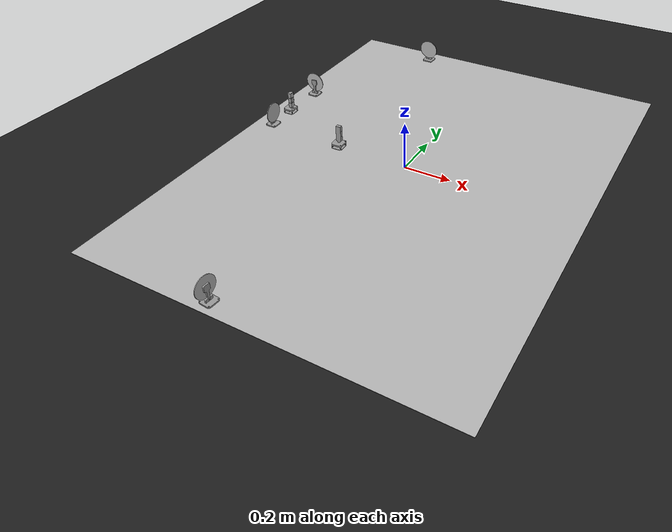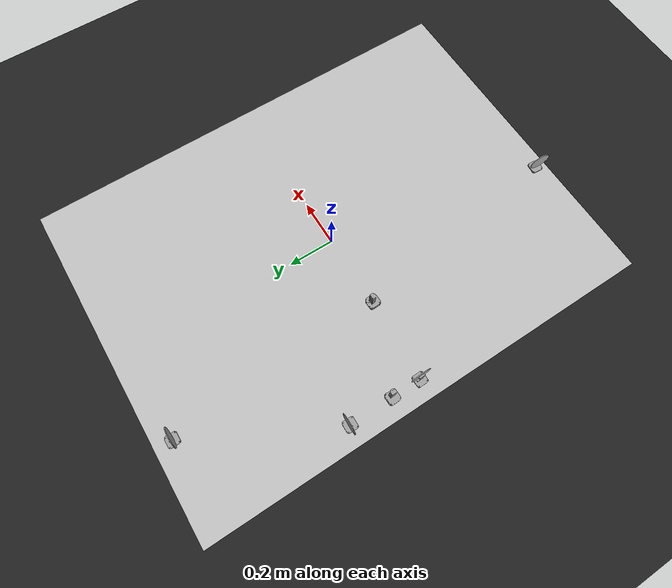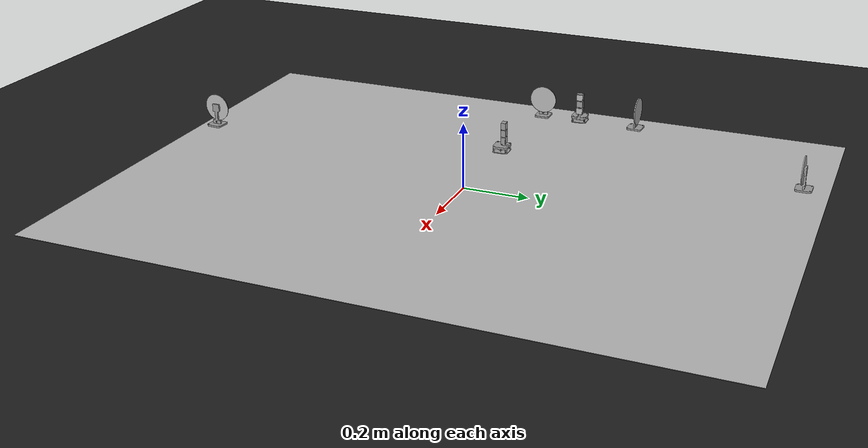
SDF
<sdf version="1.6">
 <world name="default">
  <scene>
   <ambient>0 0 0 1</ambient>
   <shadows>0</shadows>
   <grid>0</grid>
   <background>0.7 0.7 0.7 1</background>
  </scene>
  <light name="sun" type="directional">
   <pose>0 0 10 0 -0 0</pose>
   <diffuse>0.8 0.8 0.8 1</diffuse>
   <specular>0.1 0.1 0.1 1</specular>
   <attenuation>
    <range>1000</range>
    <constant>0.9</constant>
    <linear>0.01</linear>
    <quadratic>0.001</quadratic>
   </attenuation>
   <direction>-0.5 0.5 -1</direction>
  </light>
  <gravity>0 0 -9.8</gravity>
  <magnetic_field>6e-06 2.3e-05 -4.2e-05</magnetic_field>
  <atmosphere type="adiabatic"/>
  <physics name="default_physics" default="0" type="ode">
   <max_step_size>0.001</max_step_size>
   <real_time_factor>1</real_time_factor>
   <real_time_update_rate>1000</real_time_update_rate>
   <ode>
    <solver>
     <iters>10</iters>
     <type>quick</type>
     <sor>1.3</sor>
     <use_dynamic_moi_rescaling>0</use_dynamic_moi_rescaling>
    </solver>
    <constraints>
     <cfm>0</cfm>
     <erp>0.2</erp>
     <contact_max_correcting_vel>100</contact_max_correcting_vel>
     <contact_surface_layer>0.001</contact_surface_layer>
    </constraints>
   </ode>
  </physics>
  <spherical_coordinates>
   <surface_model>EARTH_WGS84</surface_model>
   <latitude_deg>0</latitude_deg>
   <longitude_deg>0</longitude_deg>
   <elevation>0</elevation>
   <heading_deg>0</heading_deg>
  </spherical_coordinates>
  <light name="user_point_light_2" type="point">
   <pose>-0.948146 0.604519 1 0 -0 0</pose>
   <diffuse>0.5 0.5 0.5 1</diffuse>
   <specular>0.1 0.1 0.1 1</specular>
   <attenuation>
    <range>20</range>
    <constant>0.5</constant>
    <linear>0.01</linear>
    <quadratic>0.001</quadratic>
   </attenuation>
   <cast_shadows>0</cast_shadows>
   <direction>0 0 -1</direction>
  </light>
  <light name="user_point_light_6" type="point">
   <pose>1.63854 1.69565 1 0 -0 0</pose>
   <diffuse>0.5 0.5 0.5 1</diffuse>
   <specular>0.1 0.1 0.1 1</specular>
   <attenuation>
    <range>20</range>
    <constant>0.5</constant>
    <linear>0.01</linear>
    <quadratic>0.001</quadratic>
   </attenuation>
   <cast_shadows>0</cast_shadows>
   <direction>0 0 -1</direction>
  </light>
  <audio><device>default</device></audio>
  <model name="track">
   <static>1</static>
   <link name="track_link">
    <visual name="track_visual">
     <cast_shadows>0</cast_shadows>
     <geometry><plane><normal>0 0 1</normal><size>1.5 2</size></plane></geometry>
     <material>
      <script>
       <uri>model://track/materials/scripts</uri>
       <uri>model://track/materials/textures/</uri>
       <name>track</name>
      </script>
     </material>
    </visual>
    <collision name="track_collision">
     <geometry><plane><normal>0 0 1</normal><size>1.5 2</size></plane></geometry>
     <surface><friction><ode><mu>1</mu><mu2>1</mu2></ode></friction></surface>
    </collision>
   </link>
  </model>
  <model name="ground">
   <pose>0.038955 0.031565 -0.01 0 -0 0</pose>
   <static>1</static>
   <link name="ground">
    <collision name="ground_coll"><geometry><box><size>8 8 0.01</size></box></geometry></collision>
    <visual name="ground_vis">
     <geometry><box><size>10 10 0.01</size></box></geometry>
     <material>
      <script><uri>file://media/materials/scripts/gazebo.material</uri><name>Gazebo/FlatBlack</name></script>
     </material>
    </visual>
   </link>
  </model>
  <model name="StopSign">
   <pose>-0.361248 0.924492 -0.059949 0.002403 -0.000769 -0.000687</pose>
   <link name="base">
    <visual name="visual">
     <pose>0 0 0.06 1.5707 -0 0</pose>
     <geometry><mesh><uri>model://StopSign/meshes/Sign_pedestal.dae</uri><scale>1 1 1</scale></mesh></geometry>
     <material>
      <script><name>Gazebo/Grey</name><uri>file://media/materials/scripts/gazebo.material</uri></script>
     </material>
    </visual>
    <collision name="collision">
     <pose>0 0 0.12 0 -0 0</pose>
     <geometry><cylinder><radius>0.02</radius><length>0.12</length></cylinder></geometry>
    </collision>
    <inertial>
     <mass>0.015</mass>
     <inertia>
      <ixx>0.166667</ixx>
      <ixy>0</ixy>
      <ixz>0</ixz>
      <iyy>0.166667</iyy>
      <iyz>0</iyz>
      <izz>0.166667</izz>
     </inertia>
    </inertial>
   </link>
   <link name="sign">
    <visual name="visual">
     <pose>0 -0.006 0.12 1.57 -0 0</pose>
     <geometry><mesh><uri>model://StopSign/meshes/stop_sign.dae</uri><scale>1 1 1</scale></mesh></geometry>
     <material>
      <script>
       <uri>model://StopSign/materials/scripts</uri>
       <uri>model://StopSign/materials/textures/</uri>
       <name>StopSign</name>
      </script>
     </material>
    </visual>
    <inertial>
     <mass>0.001</mass>
     <inertia>
      <ixx>0.166667</ixx>
      <ixy>0</ixy>
      <ixz>0</ixz>
      <iyy>0.166667</iyy>
      <iyz>0</iyz>
      <izz>0.166667</izz>
     </inertia>
    </inertial>
   </link>
   <joint name="joint_sign" type="fixed"><parent>base</parent><child>sign</child></joint>
  </model>
  <model name="AheadSign">
   <link name="base">
    <visual name="visual">
     <pose>0 0 0.06 1.5707 -0 0</pose>
     <geometry><mesh><uri>model://AheadSign/meshes/Sign_pedestal.dae</uri><scale>1 1 1</scale></mesh></geometry>
     <material>
      <script><name>Gazebo/Grey</name><uri>file://media/materials/scripts/gazebo.material</uri></script>
     </material>
    </visual>
    <collision name="collision">
     <pose>0 0 0.12 0 -0 0</pose>
     <geometry><cylinder><radius>0.02</radius><length>0.12</length></cylinder></geometry>
    </collision>
    <inertial>
     <mass>0.015</mass>
     <inertia>
      <ixx>0.166667</ixx>
      <ixy>0</ixy>
      <ixz>0</ixz>
      <iyy>0.166667</iyy>
      <iyz>0</iyz>
      <izz>0.166667</izz>
     </inertia>
    </inertial>
   </link>
   <link name="sign">
    <visual name="visual">
     <pose>0 -0.006 0.12 1.57 -0 0</pose>
     <geometry><mesh><uri>model://AheadSign/meshes/AheadSign.dae</uri><scale>1 1 1</scale></mesh></geometry>
     <material>
      <script>
       <uri>model://AheadSign/materials/scripts</uri>
       <uri>model://AheadSign/materials/textures/</uri>
       <name>AheadSign</name>
      </script>
     </material>
    </visual>
    <inertial>
     <mass>0.001</mass>
     <inertia>
      <ixx>0.166667</ixx>
      <ixy>0</ixy>
      <ixz>0</ixz>
      <iyy>0.166667</iyy>
      <iyz>0</iyz>
      <izz>0.166667</izz>
     </inertia>
    </inertial>
   </link>
   <joint name="joint_sign" type="fixed"><parent>base</parent><child>sign</child></joint>
   <pose>-0.667236 0.339053 -0.059989 -0.000516 -9.6e-05 3.11698</pose>
  </model>
  <model name="TurnRightSign">
   <link name="base">
    <visual name="visual">
     <pose>0 0 0.06 1.5707 -0 0</pose>
     <geometry>
      <mesh><uri>model://TurnRightSign/meshes/Sign_pedestal.dae</uri><scale>1 1 1</scale></mesh>
     </geometry>
     <material>
      <script><name>Gazebo/Grey</name><uri>file://media/materials/scripts/gazebo.material</uri></script>
     </material>
    </visual>
    <collision name="collision">
     <pose>0 0 0.12 0 -0 0</pose>
     <geometry><cylinder><radius>0.02</radius><length>0.12</length></cylinder></geometry>
    </collision>
    <inertial>
     <mass>0.015</mass>
     <inertia>
      <ixx>0.166667</ixx>
      <ixy>0</ixy>
      <ixz>0</ixz>
      <iyy>0.166667</iyy>
      <iyz>0</iyz>
      <izz>0.166667</izz>
     </inertia>
    </inertial>
   </link>
   <link name="sign">
    <visual name="visual">
     <pose>0 -0.006 0.12 1.57 -0 0</pose>
     <geometry>
      <mesh><uri>model://TurnRightSign/meshes/TurnRightSign.dae</uri><scale>1 1 1</scale></mesh>
     </geometry>
     <material>
      <script>
       <uri>model://TurnRightSign/materials/scripts</uri>
       <uri>model://TurnRightSign/materials/textures/</uri>
       <name>TurnRightSign</name>
      </script>
     </material>
    </visual>
    <inertial>
     <mass>0.001</mass>
     <inertia>
      <ixx>0.166667</ixx>
      <ixy>0</ixy>
      <ixz>0</ixz>
      <iyy>0.166667</iyy>
      <iyz>0</iyz>
      <izz>0.166667</izz>
     </inertia>
    </inertial>
   </link>
   <joint name="joint_sign" type="fixed"><parent>base</parent><child>sign</child></joint>
   <pose>-0.66897 0.020478 -0.059968 0.001249 -0.001013 1.59189</pose>
  </model>
  <model name="NoSpeedLSign">
   <link name="base">
    <visual name="visual">
     <pose>0 0 0.06 1.5707 -0 0</pose>
     <geometry><mesh><uri>model://NoSpeedLSign/meshes/Sign_pedestal.dae</uri><scale>1 1 1</scale></mesh></geometry>
     <material>
      <script><name>Gazebo/Grey</name><uri>file://media/materials/scripts/gazebo.material</uri></script>
     </material>
    </visual>
    <collision name="collision">
     <pose>0 0 0.12 0 -0 0</pose>
     <geometry><cylinder><radius>0.02</radius><length>0.12</length></cylinder></geometry>
    </collision>
    <inertial>
     <mass>0.015</mass>
     <inertia>
      <ixx>0.166667</ixx>
      <ixy>0</ixy>
      <ixz>0</ixz>
      <iyy>0.166667</iyy>
      <iyz>0</iyz>
      <izz>0.166667</izz>
     </inertia>
    </inertial>
   </link>
   <link name="sign">
    <visual name="visual">
     <pose>0 -0.006 0.12 1.57 -0 0</pose>
     <geometry><mesh><uri>model://NoSpeedLSign/meshes/NoSpeedLSign.dae</uri><scale>1 1 1</scale></mesh></geometry>
     <material>
      <script>
       <uri>model://NoSpeedLSign/materials/scripts</uri>
       <uri>model://NoSpeedLSign/materials/textures/</uri>
       <name>NoSpeedLSign</name>
      </script>
     </material>
    </visual>
    <inertial>
     <mass>0.001</mass>
     <inertia>
      <ixx>0.166667</ixx>
      <ixy>0</ixy>
      <ixz>0</ixz>
      <iyy>0.166667</iyy>
      <iyz>0</iyz>
      <izz>0.166667</izz>
     </inertia>
    </inertial>
   </link>
   <joint name="joint_sign" type="fixed"><parent>base</parent><child>sign</child></joint>
   <pose>-0.178344 -0.95185 -0.059826 0.008414 0.001619 -1.66208</pose>
  </model>
  <model name="Traffic_Light">
   <link name="base">
    <visual name="visual">
     <pose>0 0 0.06 1.5707 -0 0</pose>
     <geometry>
      <mesh><uri>model://Traffic_Light/meshes/traffic_light_stand.stl</uri><scale>1 1 1</scale></mesh>
     </geometry>
     <material>
      <script><name>Gazebo/Grey</name><uri>file://media/materials/scripts/gazebo.material</uri></script>
     </material>
    </visual>
    <collision name="collision">
     <pose>0 0 0.12 0 -0 0</pose>
     <geometry><cylinder><radius>0.02</radius><length>0.12</length></cylinder></geometry>
    </collision>
    <inertial>
     <mass>0.015</mass>
     <inertia>
      <ixx>0.166667</ixx>
      <ixy>0</ixy>
      <ixz>0</ixz>
      <iyy>0.166667</iyy>
      <iyz>0</iyz>
      <izz>0.166667</izz>
     </inertia>
    </inertial>
   </link>
   <link name="green_light">
    <visual name="visual">
     <pose>0 -0.014 0.098 0 -0 0</pose>
     <geometry><box><size>0.02 0.001 0.02</size></box></geometry>
     <plugin name="color timed" filename="libcolor_timer_plugin.so">
      <color>0 1 0 0</color>
      <period>20</period>
      <use_wall_time>1</use_wall_time>
     </plugin>
    </visual>
    <inertial>
     <mass>0.001</mass>
     <inertia>
      <ixx>0.166667</ixx>
      <ixy>0</ixy>
      <ixz>0</ixz>
      <iyy>0.166667</iyy>
      <iyz>0</iyz>
      <izz>0.166667</izz>
     </inertia>
    </inertial>
   </link>
   <link name="amber_light">
    <visual name="visual">
     <pose>0 -0.014 0.122 0 -0 0</pose>
     <geometry><box><size>0.02 0.001 0.02</size></box></geometry>
     <material>
      <script><uri>file://media/materials/scripts/gazebo.material</uri><name>Gazebo/Grey</name></script>
     </material>
    </visual>
    <inertial>
     <mass>0.001</mass>
     <inertia>
      <ixx>0.166667</ixx>
      <ixy>0</ixy>
      <ixz>0</ixz>
      <iyy>0.166667</iyy>
      <iyz>0</iyz>
      <izz>0.166667</izz>
     </inertia>
    </inertial>
   </link>
   <link name="red_light">
    <visual name="visual">
     <pose>0 -0.014 0.145 0 -0 0</pose>
     <geometry><box><size>0.02 0.001 0.02</size></box></geometry>
     <plugin name="color timed" filename="libcolor_timer_plugin.so">
      <color>1 0 0 1</color>
      <period>20</period>
      <use_wall_time>1</use_wall_time>
     </plugin>
    </visual>
    <inertial>
     <mass>0.001</mass>
     <inertia>
      <ixx>0.166667</ixx>
      <ixy>0</ixy>
      <ixz>0</ixz>
      <iyy>0.166667</iyy>
      <iyz>0</iyz>
      <izz>0.166667</izz>
     </inertia>
    </inertial>
   </link>
   <joint name="joint_red" type="fixed"><parent>base</parent><child>red_light</child></joint>
   <joint name="joint_amber" type="fixed"><parent>base</parent><child>amber_light</child></joint>
   <joint name="joint_green" type="fixed"><parent>base</parent><child>green_light</child></joint>
   <static>0</static>
   <pose>-0.315882 0.001872 -0.059909 0.00114 -0.004846 -3.10648</pose>
  </model>
  <model name="Traffic_Light_2">
   <link name="base">
    <visual name="visual">
     <pose>0 0 0.06 1.5707 -0 0</pose>
     <geometry>
      <mesh><uri>model://Traffic_Light/meshes/traffic_light_stand.stl</uri><scale>1 1 1</scale></mesh>
     </geometry>
     <material>
      <script><name>Gazebo/Grey</name><uri>file://media/materials/scripts/gazebo.material</uri></script>
     </material>
    </visual>
    <collision name="collision">
     <pose>0 0 0.12 0 -0 0</pose>
     <geometry><cylinder><radius>0.02</radius><length>0.12</length></cylinder></geometry>
    </collision>
    <inertial>
     <mass>0.015</mass>
     <inertia>
      <ixx>0.166667</ixx>
      <ixy>0</ixy>
      <ixz>0</ixz>
      <iyy>0.166667</iyy>
      <iyz>0</iyz>
      <izz>0.166667</izz>
     </inertia>
    </inertial>
   </link>
   <link name="green_light">
    <visual name="visual">
     <pose>0 -0.014 0.098 0 -0 0</pose>
     <geometry><box><size>0.02 0.001 0.02</size></box></geometry>
     <plugin name="color timed" filename="libcolor_timer_plugin.so">
      <color>0 1 0 1</color>
      <period>20</period>
      <use_wall_time>1</use_wall_time>
     </plugin>
    </visual>
    <inertial>
     <mass>0.001</mass>
     <inertia>
      <ixx>0.166667</ixx>
      <ixy>0</ixy>
      <ixz>0</ixz>
      <iyy>0.166667</iyy>
      <iyz>0</iyz>
      <izz>0.166667</izz>
     </inertia>
    </inertial>
   </link>
   <link name="amber_light">
    <visual name="visual">
     <pose>0 -0.014 0.122 0 -0 0</pose>
     <geometry><box><size>0.02 0.001 0.02</size></box></geometry>
     <material>
      <script><uri>file://media/materials/scripts/gazebo.material</uri><name>Gazebo/Grey</name></script>
     </material>
    </visual>
    <inertial>
     <mass>0.001</mass>
     <inertia>
      <ixx>0.166667</ixx>
      <ixy>0</ixy>
      <ixz>0</ixz>
      <iyy>0.166667</iyy>
      <iyz>0</iyz>
      <izz>0.166667</izz>
     </inertia>
    </inertial>
   </link>
   <link name="red_light">
    <visual name="visual">
     <pose>0 -0.014 0.145 0 -0 0</pose>
     <geometry><box><size>0.02 0.001 0.02</size></box></geometry>
     <plugin name="color timed" filename="libcolor_timer_plugin.so">
      <color>1 0 0 0</color>
      <period>20</period>
      <use_wall_time>1</use_wall_time>
     </plugin>
    </visual>
    <inertial>
     <mass>0.001</mass>
     <inertia>
      <ixx>0.166667</ixx>
      <ixy>0</ixy>
      <ixz>0</ixz>
      <iyy>0.166667</iyy>
      <iyz>0</iyz>
      <izz>0.166667</izz>
     </inertia>
    </inertial>
   </link>
   <joint name="joint_red" type="fixed"><parent>base</parent><child>red_light</child></joint>
   <joint name="joint_amber" type="fixed"><parent>base</parent><child>amber_light</child></joint>
   <joint name="joint_green" type="fixed"><parent>base</parent><child>green_light</child></joint>
   <static>0</static>
   <pose>-0.668444 0.148879 -0.059989 -0.000522 0.000177 1.59966</pose>
  </model>
 </world>
</sdf>
